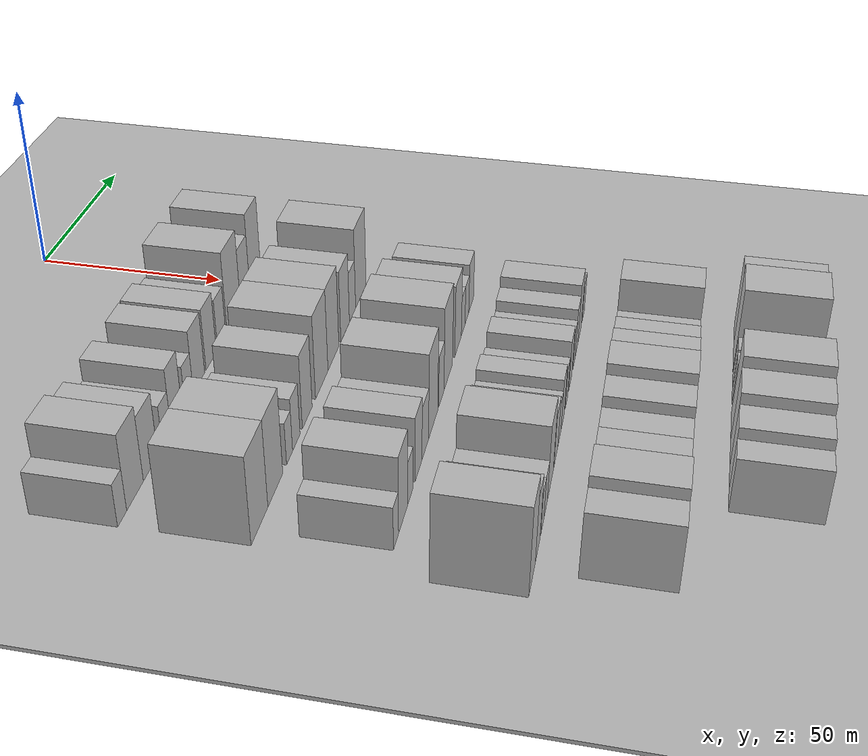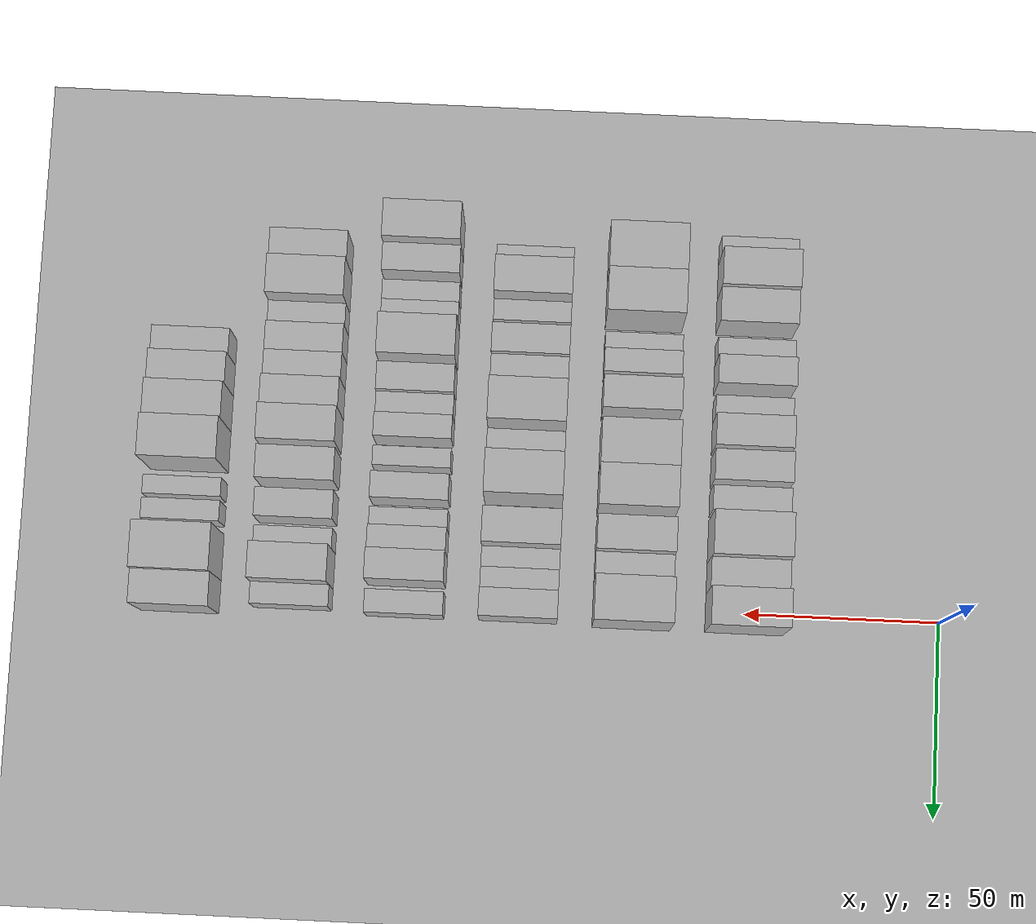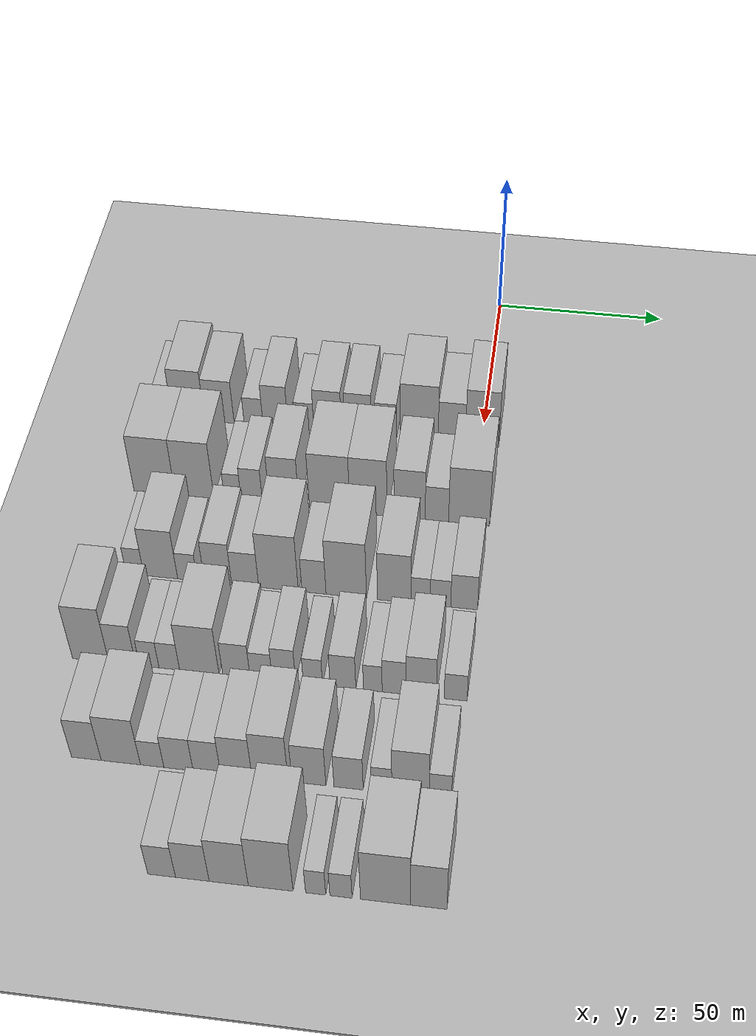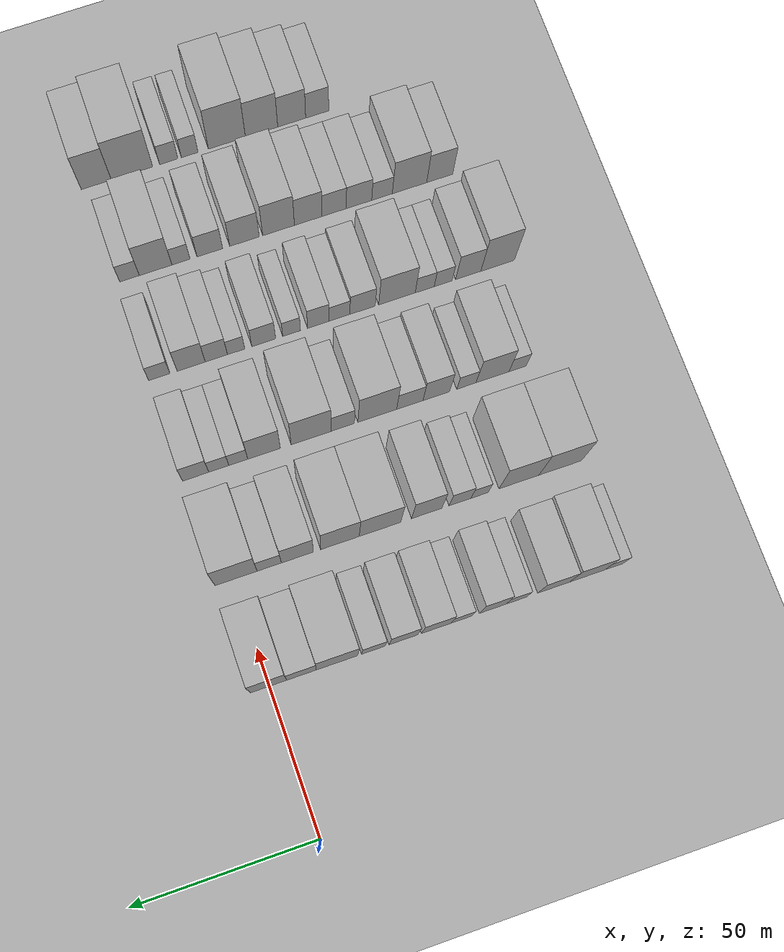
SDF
<sdf version="1.6">
 <world name="default">
  <include><name>ground_plane_1</name><uri>model://HANNAS_ground_plane</uri></include>
  <include>
   <name>ground_plane_2</name>
   <uri>model://HANNAS_ground_plane</uri>
   <pose>100 0 0  0 0 0</pose>
  </include>
  <model name="building_47">
   <static>1</static>
   <pose>50.0000 -94.1896 0 0.000000 0.000000 0.000000</pose>
   <link name="link">
    <pose>0 0 6.00 0 0 0</pose>
    <collision name="collision"><geometry><box><size>20.0000 5.1019 12.0000</size></box></geometry></collision>
    <visual name="visual">
     <cast_shadows>0</cast_shadows>
     <geometry><box><size>20.0000 5.1019 12.0000</size></box></geometry>
     <material>
      <script>
       <uri>model://HANNAS_wall/materials/scripts</uri>
       <uri>model://HANNAS_wall/materials/textures</uri>
       <name>vrc/HANNAS_wall</name>
      </script>
     </material>
    </visual>
   </link>
  </model>
  <model name="building_48">
   <static>1</static>
   <pose>50.0000 -86.7541 0 0.000000 0.000000 0.000000</pose>
   <link name="link">
    <pose>0 0 10.50 0 0 0</pose>
    <collision name="collision"><geometry><box><size>20.0000 9.7691 21.0000</size></box></geometry></collision>
    <visual name="visual">
     <cast_shadows>0</cast_shadows>
     <geometry><box><size>20.0000 9.7691 21.0000</size></box></geometry>
     <material>
      <script>
       <uri>model://HANNAS_wall/materials/scripts</uri>
       <uri>model://HANNAS_wall/materials/textures</uri>
       <name>vrc/HANNAS_wall</name>
      </script>
     </material>
    </visual>
   </link>
  </model>
  <model name="building_49">
   <static>1</static>
   <pose>50.0000 -77.4556 0 0.000000 0.000000 0.000000</pose>
   <link name="link">
    <pose>0 0 9.00 0 0 0</pose>
    <collision name="collision"><geometry><box><size>20.0000 8.8279 18.0000</size></box></geometry></collision>
    <visual name="visual">
     <cast_shadows>0</cast_shadows>
     <geometry><box><size>20.0000 8.8279 18.0000</size></box></geometry>
     <material>
      <script>
       <uri>model://HANNAS_wall/materials/scripts</uri>
       <uri>model://HANNAS_wall/materials/textures</uri>
       <name>vrc/HANNAS_wall</name>
      </script>
     </material>
    </visual>
   </link>
  </model>
  <model name="building_50">
   <static>1</static>
   <pose>50.0000 -67.2136 0 0.000000 0.000000 0.000000</pose>
   <link name="link">
    <pose>0 0 6.00 0 0 0</pose>
    <collision name="collision"><geometry><box><size>20.0000 5.6560 12.0000</size></box></geometry></collision>
    <visual name="visual">
     <cast_shadows>0</cast_shadows>
     <geometry><box><size>20.0000 5.6560 12.0000</size></box></geometry>
     <material>
      <script>
       <uri>model://HANNAS_wall/materials/scripts</uri>
       <uri>model://HANNAS_wall/materials/textures</uri>
       <name>vrc/HANNAS_wall</name>
      </script>
     </material>
    </visual>
   </link>
  </model>
  <model name="building_51">
   <static>1</static>
   <pose>50.0000 -60.6760 0 0.000000 0.000000 0.000000</pose>
   <link name="link">
    <pose>0 0 9.00 0 0 0</pose>
    <collision name="collision"><geometry><box><size>20.0000 7.4193 18.0000</size></box></geometry></collision>
    <visual name="visual">
     <cast_shadows>0</cast_shadows>
     <geometry><box><size>20.0000 7.4193 18.0000</size></box></geometry>
     <material>
      <script>
       <uri>model://HANNAS_wall/materials/scripts</uri>
       <uri>model://HANNAS_wall/materials/textures</uri>
       <name>vrc/HANNAS_wall</name>
      </script>
     </material>
    </visual>
   </link>
  </model>
  <model name="building_52">
   <static>1</static>
   <pose>50.0000 -52.1149 0 0.000000 0.000000 0.000000</pose>
   <link name="link">
    <pose>0 0 6.00 0 0 0</pose>
    <collision name="collision"><geometry><box><size>20.0000 5.7030 12.0000</size></box></geometry></collision>
    <visual name="visual">
     <cast_shadows>0</cast_shadows>
     <geometry><box><size>20.0000 5.7030 12.0000</size></box></geometry>
     <material>
      <script>
       <uri>model://HANNAS_wall/materials/scripts</uri>
       <uri>model://HANNAS_wall/materials/textures</uri>
       <name>vrc/HANNAS_wall</name>
      </script>
     </material>
    </visual>
   </link>
  </model>
  <model name="building_53">
   <static>1</static>
   <pose>50.0000 -45.1752 0 0.000000 0.000000 0.000000</pose>
   <link name="link">
    <pose>0 0 9.00 0 0 0</pose>
    <collision name="collision"><geometry><box><size>20.0000 8.1764 18.0000</size></box></geometry></collision>
    <visual name="visual">
     <cast_shadows>0</cast_shadows>
     <geometry><box><size>20.0000 8.1764 18.0000</size></box></geometry>
     <material>
      <script>
       <uri>model://HANNAS_wall/materials/scripts</uri>
       <uri>model://HANNAS_wall/materials/textures</uri>
       <name>vrc/HANNAS_wall</name>
      </script>
     </material>
    </visual>
   </link>
  </model>
  <model name="building_54">
   <static>1</static>
   <pose>50.0000 -36.1667 0 0.000000 0.000000 0.000000</pose>
   <link name="link">
    <pose>0 0 9.00 0 0 0</pose>
    <collision name="collision"><geometry><box><size>20.0000 7.8407 18.0000</size></box></geometry></collision>
    <visual name="visual">
     <cast_shadows>0</cast_shadows>
     <geometry><box><size>20.0000 7.8407 18.0000</size></box></geometry>
     <material>
      <script>
       <uri>model://HANNAS_wall/materials/scripts</uri>
       <uri>model://HANNAS_wall/materials/textures</uri>
       <name>vrc/HANNAS_wall</name>
      </script>
     </material>
    </visual>
   </link>
  </model>
  <model name="building_55">
   <static>1</static>
   <pose>50.0000 -28.0288 0 0.000000 0.000000 0.000000</pose>
   <link name="link">
    <pose>0 0 7.50 0 0 0</pose>
    <collision name="collision"><geometry><box><size>20.0000 6.4351 15.0000</size></box></geometry></collision>
    <visual name="visual">
     <cast_shadows>0</cast_shadows>
     <geometry><box><size>20.0000 6.4351 15.0000</size></box></geometry>
     <material>
      <script>
       <uri>model://HANNAS_wall/materials/scripts</uri>
       <uri>model://HANNAS_wall/materials/textures</uri>
       <name>vrc/HANNAS_wall</name>
      </script>
     </material>
    </visual>
   </link>
  </model>
  <model name="building_56">
   <static>1</static>
   <pose>50.0000 -18.2047 0 0.000000 0.000000 0.000000</pose>
   <link name="link">
    <pose>0 0 12.00 0 0 0</pose>
    <collision name="collision"><geometry><box><size>20.0000 11.2131 24.0000</size></box></geometry></collision>
    <visual name="visual">
     <cast_shadows>0</cast_shadows>
     <geometry><box><size>20.0000 11.2131 24.0000</size></box></geometry>
     <material>
      <script>
       <uri>model://HANNAS_wall/materials/scripts</uri>
       <uri>model://HANNAS_wall/materials/textures</uri>
       <name>vrc/HANNAS_wall</name>
      </script>
     </material>
    </visual>
   </link>
  </model>
  <model name="building_57">
   <static>1</static>
   <pose>50.0000 -8.6373 0 0.000000 0.000000 0.000000</pose>
   <link name="link">
    <pose>0 0 9.00 0 0 0</pose>
    <collision name="collision"><geometry><box><size>20.0000 7.9216 18.0000</size></box></geometry></collision>
    <visual name="visual">
     <cast_shadows>0</cast_shadows>
     <geometry><box><size>20.0000 7.9216 18.0000</size></box></geometry>
     <material>
      <script>
       <uri>model://HANNAS_wall/materials/scripts</uri>
       <uri>model://HANNAS_wall/materials/textures</uri>
       <name>vrc/HANNAS_wall</name>
      </script>
     </material>
    </visual>
   </link>
  </model>
  <model name="building_58">
   <static>1</static>
   <pose>50.0000 0.1836 0 0.000000 0.000000 0.000000</pose>
   <link name="link">
    <pose>0 0 12.00 0 0 0</pose>
    <collision name="collision"><geometry><box><size>20.0000 9.7202 24.0000</size></box></geometry></collision>
    <visual name="visual">
     <cast_shadows>0</cast_shadows>
     <geometry><box><size>20.0000 9.7202 24.0000</size></box></geometry>
     <material>
      <script>
       <uri>model://HANNAS_wall/materials/scripts</uri>
       <uri>model://HANNAS_wall/materials/textures</uri>
       <name>vrc/HANNAS_wall</name>
      </script>
     </material>
    </visual>
   </link>
  </model>
  <model name="building_164">
   <static>1</static>
   <pose>79.0000 -90.3700 0 0.000000 0.000000 0.000000</pose>
   <link name="link">
    <pose>0 0 12.00 0 0 0</pose>
    <collision name="collision"><geometry><box><size>20.0000 11.9789 24.0000</size></box></geometry></collision>
    <visual name="visual">
     <cast_shadows>0</cast_shadows>
     <geometry><box><size>20.0000 11.9789 24.0000</size></box></geometry>
     <material>
      <script>
       <uri>model://HANNAS_wall/materials/scripts</uri>
       <uri>model://HANNAS_wall/materials/textures</uri>
       <name>vrc/HANNAS_wall</name>
      </script>
     </material>
    </visual>
   </link>
  </model>
  <model name="building_165">
   <static>1</static>
   <pose>79.0000 -78.7719 0 0.000000 0.000000 0.000000</pose>
   <link name="link">
    <pose>0 0 12.00 0 0 0</pose>
    <collision name="collision"><geometry><box><size>20.0000 11.2173 24.0000</size></box></geometry></collision>
    <visual name="visual">
     <cast_shadows>0</cast_shadows>
     <geometry><box><size>20.0000 11.2173 24.0000</size></box></geometry>
     <material>
      <script>
       <uri>model://HANNAS_wall/materials/scripts</uri>
       <uri>model://HANNAS_wall/materials/textures</uri>
       <name>vrc/HANNAS_wall</name>
      </script>
     </material>
    </visual>
   </link>
  </model>
  <model name="building_166">
   <static>1</static>
   <pose>79.0000 -67.7441 0 0.000000 0.000000 0.000000</pose>
   <link name="link">
    <pose>0 0 6.00 0 0 0</pose>
    <collision name="collision"><geometry><box><size>20.0000 4.8381 12.0000</size></box></geometry></collision>
    <visual name="visual">
     <cast_shadows>0</cast_shadows>
     <geometry><box><size>20.0000 4.8381 12.0000</size></box></geometry>
     <material>
      <script>
       <uri>model://HANNAS_wall/materials/scripts</uri>
       <uri>model://HANNAS_wall/materials/textures</uri>
       <name>vrc/HANNAS_wall</name>
      </script>
     </material>
    </visual>
   </link>
  </model>
  <model name="building_167">
   <static>1</static>
   <pose>79.0000 -62.2663 0 0.000000 0.000000 0.000000</pose>
   <link name="link">
    <pose>0 0 7.50 0 0 0</pose>
    <collision name="collision"><geometry><box><size>20.0000 6.1175 15.0000</size></box></geometry></collision>
    <visual name="visual">
     <cast_shadows>0</cast_shadows>
     <geometry><box><size>20.0000 6.1175 15.0000</size></box></geometry>
     <material>
      <script>
       <uri>model://HANNAS_wall/materials/scripts</uri>
       <uri>model://HANNAS_wall/materials/textures</uri>
       <name>vrc/HANNAS_wall</name>
      </script>
     </material>
    </visual>
   </link>
  </model>
  <model name="building_168">
   <static>1</static>
   <pose>79.0000 -52.9854 0 0.000000 0.000000 0.000000</pose>
   <link name="link">
    <pose>0 0 10.50 0 0 0</pose>
    <collision name="collision"><geometry><box><size>20.0000 8.4445 21.0000</size></box></geometry></collision>
    <visual name="visual">
     <cast_shadows>0</cast_shadows>
     <geometry><box><size>20.0000 8.4445 21.0000</size></box></geometry>
     <material>
      <script>
       <uri>model://HANNAS_wall/materials/scripts</uri>
       <uri>model://HANNAS_wall/materials/textures</uri>
       <name>vrc/HANNAS_wall</name>
      </script>
     </material>
    </visual>
   </link>
  </model>
  <model name="building_169">
   <static>1</static>
   <pose>79.0000 -40.0186 0 0.000000 0.000000 0.000000</pose>
   <link name="link">
    <pose>0 0 12.00 0 0 0</pose>
    <collision name="collision"><geometry><box><size>20.0000 11.4890 24.0000</size></box></geometry></collision>
    <visual name="visual">
     <cast_shadows>0</cast_shadows>
     <geometry><box><size>20.0000 11.4890 24.0000</size></box></geometry>
     <material>
      <script>
       <uri>model://HANNAS_wall/materials/scripts</uri>
       <uri>model://HANNAS_wall/materials/textures</uri>
       <name>vrc/HANNAS_wall</name>
      </script>
     </material>
    </visual>
   </link>
  </model>
  <model name="building_170">
   <static>1</static>
   <pose>79.0000 -28.9807 0 0.000000 0.000000 0.000000</pose>
   <link name="link">
    <pose>0 0 12.00 0 0 0</pose>
    <collision name="collision"><geometry><box><size>20.0000 10.5869 24.0000</size></box></geometry></collision>
    <visual name="visual">
     <cast_shadows>0</cast_shadows>
     <geometry><box><size>20.0000 10.5869 24.0000</size></box></geometry>
     <material>
      <script>
       <uri>model://HANNAS_wall/materials/scripts</uri>
       <uri>model://HANNAS_wall/materials/textures</uri>
       <name>vrc/HANNAS_wall</name>
      </script>
     </material>
    </visual>
   </link>
  </model>
  <model name="building_171">
   <static>1</static>
   <pose>79.0000 -17.2989 0 0.000000 0.000000 0.000000</pose>
   <link name="link">
    <pose>0 0 10.50 0 0 0</pose>
    <collision name="collision"><geometry><box><size>20.0000 8.7767 21.0000</size></box></geometry></collision>
    <visual name="visual">
     <cast_shadows>0</cast_shadows>
     <geometry><box><size>20.0000 8.7767 21.0000</size></box></geometry>
     <material>
      <script>
       <uri>model://HANNAS_wall/materials/scripts</uri>
       <uri>model://HANNAS_wall/materials/textures</uri>
       <name>vrc/HANNAS_wall</name>
      </script>
     </material>
    </visual>
   </link>
  </model>
  <model name="building_172">
   <static>1</static>
   <pose>79.0000 -9.6079 0 0.000000 0.000000 0.000000</pose>
   <link name="link">
    <pose>0 0 7.50 0 0 0</pose>
    <collision name="collision"><geometry><box><size>20.0000 6.6052 15.0000</size></box></geometry></collision>
    <visual name="visual">
     <cast_shadows>0</cast_shadows>
     <geometry><box><size>20.0000 6.6052 15.0000</size></box></geometry>
     <material>
      <script>
       <uri>model://HANNAS_wall/materials/scripts</uri>
       <uri>model://HANNAS_wall/materials/textures</uri>
       <name>vrc/HANNAS_wall</name>
      </script>
     </material>
    </visual>
   </link>
  </model>
  <model name="building_173">
   <static>1</static>
   <pose>79.0000 -0.5619 0 0.000000 0.000000 0.000000</pose>
   <link name="link">
    <pose>0 0 12.00 0 0 0</pose>
    <collision name="collision"><geometry><box><size>20.0000 11.4868 24.0000</size></box></geometry></collision>
    <visual name="visual">
     <cast_shadows>0</cast_shadows>
     <geometry><box><size>20.0000 11.4868 24.0000</size></box></geometry>
     <material>
      <script>
       <uri>model://HANNAS_wall/materials/scripts</uri>
       <uri>model://HANNAS_wall/materials/textures</uri>
       <name>vrc/HANNAS_wall</name>
      </script>
     </material>
    </visual>
   </link>
  </model>
  <model name="building_271">
   <static>1</static>
   <pose>108.0000 -89.2500 0 0.000000 0.000000 0.000000</pose>
   <link name="link">
    <pose>0 0 6.00 0 0 0</pose>
    <collision name="collision"><geometry><box><size>20.0000 4.9709 12.0000</size></box></geometry></collision>
    <visual name="visual">
     <cast_shadows>0</cast_shadows>
     <geometry><box><size>20.0000 4.9709 12.0000</size></box></geometry>
     <material>
      <script>
       <uri>model://HANNAS_wall/materials/scripts</uri>
       <uri>model://HANNAS_wall/materials/textures</uri>
       <name>vrc/HANNAS_wall</name>
      </script>
     </material>
    </visual>
   </link>
  </model>
  <model name="building_272">
   <static>1</static>
   <pose>108.0000 -82.0687 0 0.000000 0.000000 0.000000</pose>
   <link name="link">
    <pose>0 0 10.50 0 0 0</pose>
    <collision name="collision"><geometry><box><size>20.0000 9.3917 21.0000</size></box></geometry></collision>
    <visual name="visual">
     <cast_shadows>0</cast_shadows>
     <geometry><box><size>20.0000 9.3917 21.0000</size></box></geometry>
     <material>
      <script>
       <uri>model://HANNAS_wall/materials/scripts</uri>
       <uri>model://HANNAS_wall/materials/textures</uri>
       <name>vrc/HANNAS_wall</name>
      </script>
     </material>
    </visual>
   </link>
  </model>
  <model name="building_273">
   <static>1</static>
   <pose>108.0000 -74.6486 0 0.000000 0.000000 0.000000</pose>
   <link name="link">
    <pose>0 0 6.00 0 0 0</pose>
    <collision name="collision"><geometry><box><size>20.0000 5.4487 12.0000</size></box></geometry></collision>
    <visual name="visual">
     <cast_shadows>0</cast_shadows>
     <geometry><box><size>20.0000 5.4487 12.0000</size></box></geometry>
     <material>
      <script>
       <uri>model://HANNAS_wall/materials/scripts</uri>
       <uri>model://HANNAS_wall/materials/textures</uri>
       <name>vrc/HANNAS_wall</name>
      </script>
     </material>
    </visual>
   </link>
  </model>
  <model name="building_274">
   <static>1</static>
   <pose>108.0000 -66.1554 0 0.000000 0.000000 0.000000</pose>
   <link name="link">
    <pose>0 0 9.00 0 0 0</pose>
    <collision name="collision"><geometry><box><size>20.0000 7.5378 18.0000</size></box></geometry></collision>
    <visual name="visual">
     <cast_shadows>0</cast_shadows>
     <geometry><box><size>20.0000 7.5378 18.0000</size></box></geometry>
     <material>
      <script>
       <uri>model://HANNAS_wall/materials/scripts</uri>
       <uri>model://HANNAS_wall/materials/textures</uri>
       <name>vrc/HANNAS_wall</name>
      </script>
     </material>
    </visual>
   </link>
  </model>
  <model name="building_275">
   <static>1</static>
   <pose>108.0000 -58.6547 0 0.000000 0.000000 0.000000</pose>
   <link name="link">
    <pose>0 0 7.50 0 0 0</pose>
    <collision name="collision"><geometry><box><size>20.0000 7.4636 15.0000</size></box></geometry></collision>
    <visual name="visual">
     <cast_shadows>0</cast_shadows>
     <geometry><box><size>20.0000 7.4636 15.0000</size></box></geometry>
     <material>
      <script>
       <uri>model://HANNAS_wall/materials/scripts</uri>
       <uri>model://HANNAS_wall/materials/textures</uri>
       <name>vrc/HANNAS_wall</name>
      </script>
     </material>
    </visual>
   </link>
  </model>
  <model name="building_276">
   <static>1</static>
   <pose>108.0000 -49.4781 0 0.000000 0.000000 0.000000</pose>
   <link name="link">
    <pose>0 0 12.00 0 0 0</pose>
    <collision name="collision"><geometry><box><size>20.0000 10.8895 24.0000</size></box></geometry></collision>
    <visual name="visual">
     <cast_shadows>0</cast_shadows>
     <geometry><box><size>20.0000 10.8895 24.0000</size></box></geometry>
     <material>
      <script>
       <uri>model://HANNAS_wall/materials/scripts</uri>
       <uri>model://HANNAS_wall/materials/textures</uri>
       <name>vrc/HANNAS_wall</name>
      </script>
     </material>
    </visual>
   </link>
  </model>
  <model name="building_277">
   <static>1</static>
   <pose>108.0000 -39.7363 0 0.000000 0.000000 0.000000</pose>
   <link name="link">
    <pose>0 0 7.50 0 0 0</pose>
    <collision name="collision"><geometry><box><size>20.0000 6.5939 15.0000</size></box></geometry></collision>
    <visual name="visual">
     <cast_shadows>0</cast_shadows>
     <geometry><box><size>20.0000 6.5939 15.0000</size></box></geometry>
     <material>
      <script>
       <uri>model://HANNAS_wall/materials/scripts</uri>
       <uri>model://HANNAS_wall/materials/textures</uri>
       <name>vrc/HANNAS_wall</name>
      </script>
     </material>
    </visual>
   </link>
  </model>
  <model name="building_278">
   <static>1</static>
   <pose>108.0000 -30.9062 0 0.000000 0.000000 0.000000</pose>
   <link name="link">
    <pose>0 0 12.00 0 0 0</pose>
    <collision name="collision"><geometry><box><size>20.0000 11.0664 24.0000</size></box></geometry></collision>
    <visual name="visual">
     <cast_shadows>0</cast_shadows>
     <geometry><box><size>20.0000 11.0664 24.0000</size></box></geometry>
     <material>
      <script>
       <uri>model://HANNAS_wall/materials/scripts</uri>
       <uri>model://HANNAS_wall/materials/textures</uri>
       <name>vrc/HANNAS_wall</name>
      </script>
     </material>
    </visual>
   </link>
  </model>
  <model name="building_279">
   <static>1</static>
   <pose>108.0000 -17.8309 0 0.000000 0.000000 0.000000</pose>
   <link name="link">
    <pose>0 0 10.50 0 0 0</pose>
    <collision name="collision"><geometry><box><size>20.0000 9.0842 21.0000</size></box></geometry></collision>
    <visual name="visual">
     <cast_shadows>0</cast_shadows>
     <geometry><box><size>20.0000 9.0842 21.0000</size></box></geometry>
     <material>
      <script>
       <uri>model://HANNAS_wall/materials/scripts</uri>
       <uri>model://HANNAS_wall/materials/textures</uri>
       <name>vrc/HANNAS_wall</name>
      </script>
     </material>
    </visual>
   </link>
  </model>
  <model name="building_280">
   <static>1</static>
   <pose>108.0000 -10.6694 0 0.000000 0.000000 0.000000</pose>
   <link name="link">
    <pose>0 0 6.00 0 0 0</pose>
    <collision name="collision"><geometry><box><size>20.0000 5.2388 12.0000</size></box></geometry></collision>
    <visual name="visual">
     <cast_shadows>0</cast_shadows>
     <geometry><box><size>20.0000 5.2388 12.0000</size></box></geometry>
     <material>
      <script>
       <uri>model://HANNAS_wall/materials/scripts</uri>
       <uri>model://HANNAS_wall/materials/textures</uri>
       <name>vrc/HANNAS_wall</name>
      </script>
     </material>
    </visual>
   </link>
  </model>
  <model name="building_281">
   <static>1</static>
   <pose>108.0000 -5.2840 0 0.000000 0.000000 0.000000</pose>
   <link name="link">
    <pose>0 0 6.00 0 0 0</pose>
    <collision name="collision"><geometry><box><size>20.0000 5.5318 12.0000</size></box></geometry></collision>
    <visual name="visual">
     <cast_shadows>0</cast_shadows>
     <geometry><box><size>20.0000 5.5318 12.0000</size></box></geometry>
     <material>
      <script>
       <uri>model://HANNAS_wall/materials/scripts</uri>
       <uri>model://HANNAS_wall/materials/textures</uri>
       <name>vrc/HANNAS_wall</name>
      </script>
     </material>
    </visual>
   </link>
  </model>
  <model name="building_282">
   <static>1</static>
   <pose>108.0000 1.1036 0 0.000000 0.000000 0.000000</pose>
   <link name="link">
    <pose>0 0 7.50 0 0 0</pose>
    <collision name="collision"><geometry><box><size>20.0000 7.2434 15.0000</size></box></geometry></collision>
    <visual name="visual">
     <cast_shadows>0</cast_shadows>
     <geometry><box><size>20.0000 7.2434 15.0000</size></box></geometry>
     <material>
      <script>
       <uri>model://HANNAS_wall/materials/scripts</uri>
       <uri>model://HANNAS_wall/materials/textures</uri>
       <name>vrc/HANNAS_wall</name>
      </script>
     </material>
    </visual>
   </link>
  </model>
  <model name="building_391">
   <static>1</static>
   <pose>137.0000 -94.3333 0 0.000000 0.000000 0.000000</pose>
   <link name="link">
    <pose>0 0 12.00 0 0 0</pose>
    <collision name="collision"><geometry><box><size>20.0000 9.7333 24.0000</size></box></geometry></collision>
    <visual name="visual">
     <cast_shadows>0</cast_shadows>
     <geometry><box><size>20.0000 9.7333 24.0000</size></box></geometry>
     <material>
      <script>
       <uri>model://HANNAS_wall/materials/scripts</uri>
       <uri>model://HANNAS_wall/materials/textures</uri>
       <name>vrc/HANNAS_wall</name>
      </script>
     </material>
    </visual>
   </link>
  </model>
  <model name="building_392">
   <static>1</static>
   <pose>137.0000 -85.8264 0 0.000000 0.000000 0.000000</pose>
   <link name="link">
    <pose>0 0 9.00 0 0 0</pose>
    <collision name="collision"><geometry><box><size>20.0000 7.2807 18.0000</size></box></geometry></collision>
    <visual name="visual">
     <cast_shadows>0</cast_shadows>
     <geometry><box><size>20.0000 7.2807 18.0000</size></box></geometry>
     <material>
      <script>
       <uri>model://HANNAS_wall/materials/scripts</uri>
       <uri>model://HANNAS_wall/materials/textures</uri>
       <name>vrc/HANNAS_wall</name>
      </script>
     </material>
    </visual>
   </link>
  </model>
  <model name="building_393">
   <static>1</static>
   <pose>137.0000 -78.6142 0 0.000000 0.000000 0.000000</pose>
   <link name="link">
    <pose>0 0 6.00 0 0 0</pose>
    <collision name="collision"><geometry><box><size>20.0000 5.1437 12.0000</size></box></geometry></collision>
    <visual name="visual">
     <cast_shadows>0</cast_shadows>
     <geometry><box><size>20.0000 5.1437 12.0000</size></box></geometry>
     <material>
      <script>
       <uri>model://HANNAS_wall/materials/scripts</uri>
       <uri>model://HANNAS_wall/materials/textures</uri>
       <name>vrc/HANNAS_wall</name>
      </script>
     </material>
    </visual>
   </link>
  </model>
  <model name="building_394">
   <static>1</static>
   <pose>137.0000 -73.2969 0 0.000000 0.000000 0.000000</pose>
   <link name="link">
    <pose>0 0 6.00 0 0 0</pose>
    <collision name="collision"><geometry><box><size>20.0000 5.4908 12.0000</size></box></geometry></collision>
    <visual name="visual">
     <cast_shadows>0</cast_shadows>
     <geometry><box><size>20.0000 5.4908 12.0000</size></box></geometry>
     <material>
      <script>
       <uri>model://HANNAS_wall/materials/scripts</uri>
       <uri>model://HANNAS_wall/materials/textures</uri>
       <name>vrc/HANNAS_wall</name>
      </script>
     </material>
    </visual>
   </link>
  </model>
  <model name="building_395">
   <static>1</static>
   <pose>137.0000 -65.3119 0 0.000000 0.000000 0.000000</pose>
   <link name="link">
    <pose>0 0 10.50 0 0 0</pose>
    <collision name="collision"><geometry><box><size>20.0000 10.4792 21.0000</size></box></geometry></collision>
    <visual name="visual">
     <cast_shadows>0</cast_shadows>
     <geometry><box><size>20.0000 10.4792 21.0000</size></box></geometry>
     <material>
      <script>
       <uri>model://HANNAS_wall/materials/scripts</uri>
       <uri>model://HANNAS_wall/materials/textures</uri>
       <name>vrc/HANNAS_wall</name>
      </script>
     </material>
    </visual>
   </link>
  </model>
  <model name="building_396">
   <static>1</static>
   <pose>137.0000 -55.4466 0 0.000000 0.000000 0.000000</pose>
   <link name="link">
    <pose>0 0 7.50 0 0 0</pose>
    <collision name="collision"><geometry><box><size>20.0000 7.2514 15.0000</size></box></geometry></collision>
    <visual name="visual">
     <cast_shadows>0</cast_shadows>
     <geometry><box><size>20.0000 7.2514 15.0000</size></box></geometry>
     <material>
      <script>
       <uri>model://HANNAS_wall/materials/scripts</uri>
       <uri>model://HANNAS_wall/materials/textures</uri>
       <name>vrc/HANNAS_wall</name>
      </script>
     </material>
    </visual>
   </link>
  </model>
  <model name="building_397">
   <static>1</static>
   <pose>137.0000 -48.8914 0 0.000000 0.000000 0.000000</pose>
   <link name="link">
    <pose>0 0 6.00 0 0 0</pose>
    <collision name="collision"><geometry><box><size>20.0000 5.8591 12.0000</size></box></geometry></collision>
    <visual name="visual">
     <cast_shadows>0</cast_shadows>
     <geometry><box><size>20.0000 5.8591 12.0000</size></box></geometry>
     <material>
      <script>
       <uri>model://HANNAS_wall/materials/scripts</uri>
       <uri>model://HANNAS_wall/materials/textures</uri>
       <name>vrc/HANNAS_wall</name>
      </script>
     </material>
    </visual>
   </link>
  </model>
  <model name="building_398">
   <static>1</static>
   <pose>137.0000 -42.8744 0 0.000000 0.000000 0.000000</pose>
   <link name="link">
    <pose>0 0 7.50 0 0 0</pose>
    <collision name="collision"><geometry><box><size>20.0000 6.1749 15.0000</size></box></geometry></collision>
    <visual name="visual">
     <cast_shadows>0</cast_shadows>
     <geometry><box><size>20.0000 6.1749 15.0000</size></box></geometry>
     <material>
      <script>
       <uri>model://HANNAS_wall/materials/scripts</uri>
       <uri>model://HANNAS_wall/materials/textures</uri>
       <name>vrc/HANNAS_wall</name>
      </script>
     </material>
    </visual>
   </link>
  </model>
  <model name="building_399">
   <static>1</static>
   <pose>137.0000 -35.2652 0 0.000000 0.000000 0.000000</pose>
   <link name="link">
    <pose>0 0 6.00 0 0 0</pose>
    <collision name="collision"><geometry><box><size>20.0000 5.0435 12.0000</size></box></geometry></collision>
    <visual name="visual">
     <cast_shadows>0</cast_shadows>
     <geometry><box><size>20.0000 5.0435 12.0000</size></box></geometry>
     <material>
      <script>
       <uri>model://HANNAS_wall/materials/scripts</uri>
       <uri>model://HANNAS_wall/materials/textures</uri>
       <name>vrc/HANNAS_wall</name>
      </script>
     </material>
    </visual>
   </link>
  </model>
  <model name="building_400">
   <static>1</static>
   <pose>137.0000 -27.3806 0 0.000000 0.000000 0.000000</pose>
   <link name="link">
    <pose>0 0 7.50 0 0 0</pose>
    <collision name="collision"><geometry><box><size>20.0000 6.7258 15.0000</size></box></geometry></collision>
    <visual name="visual">
     <cast_shadows>0</cast_shadows>
     <geometry><box><size>20.0000 6.7258 15.0000</size></box></geometry>
     <material>
      <script>
       <uri>model://HANNAS_wall/materials/scripts</uri>
       <uri>model://HANNAS_wall/materials/textures</uri>
       <name>vrc/HANNAS_wall</name>
      </script>
     </material>
    </visual>
   </link>
  </model>
  <model name="building_401">
   <static>1</static>
   <pose>137.0000 -19.5719 0 0.000000 0.000000 0.000000</pose>
   <link name="link">
    <pose>0 0 6.00 0 0 0</pose>
    <collision name="collision"><geometry><box><size>20.0000 4.8915 12.0000</size></box></geometry></collision>
    <visual name="visual">
     <cast_shadows>0</cast_shadows>
     <geometry><box><size>20.0000 4.8915 12.0000</size></box></geometry>
     <material>
      <script>
       <uri>model://HANNAS_wall/materials/scripts</uri>
       <uri>model://HANNAS_wall/materials/textures</uri>
       <name>vrc/HANNAS_wall</name>
      </script>
     </material>
    </visual>
   </link>
  </model>
  <model name="building_402">
   <static>1</static>
   <pose>137.0000 -14.0060 0 0.000000 0.000000 0.000000</pose>
   <link name="link">
    <pose>0 0 7.50 0 0 0</pose>
    <collision name="collision"><geometry><box><size>20.0000 6.2405 15.0000</size></box></geometry></collision>
    <visual name="visual">
     <cast_shadows>0</cast_shadows>
     <geometry><box><size>20.0000 6.2405 15.0000</size></box></geometry>
     <material>
      <script>
       <uri>model://HANNAS_wall/materials/scripts</uri>
       <uri>model://HANNAS_wall/materials/textures</uri>
       <name>vrc/HANNAS_wall</name>
      </script>
     </material>
    </visual>
   </link>
  </model>
  <model name="building_403">
   <static>1</static>
   <pose>137.0000 -6.9425 0 0.000000 0.000000 0.000000</pose>
   <link name="link">
    <pose>0 0 9.00 0 0 0</pose>
    <collision name="collision"><geometry><box><size>20.0000 7.8864 18.0000</size></box></geometry></collision>
    <visual name="visual">
     <cast_shadows>0</cast_shadows>
     <geometry><box><size>20.0000 7.8864 18.0000</size></box></geometry>
     <material>
      <script>
       <uri>model://HANNAS_wall/materials/scripts</uri>
       <uri>model://HANNAS_wall/materials/textures</uri>
       <name>vrc/HANNAS_wall</name>
      </script>
     </material>
    </visual>
   </link>
  </model>
  <model name="building_404">
   <static>1</static>
   <pose>137.0000 1.9754 0 0.000000 0.000000 0.000000</pose>
   <link name="link">
    <pose>0 0 6.00 0 0 0</pose>
    <collision name="collision"><geometry><box><size>20.0000 5.9493 12.0000</size></box></geometry></collision>
    <visual name="visual">
     <cast_shadows>0</cast_shadows>
     <geometry><box><size>20.0000 5.9493 12.0000</size></box></geometry>
     <material>
      <script>
       <uri>model://HANNAS_wall/materials/scripts</uri>
       <uri>model://HANNAS_wall/materials/textures</uri>
       <name>vrc/HANNAS_wall</name>
      </script>
     </material>
    </visual>
   </link>
  </model>
  <model name="building_513">
   <static>1</static>
   <pose>166.0000 -88.1132 0 0.000000 0.000000 0.000000</pose>
   <link name="link">
    <pose>0 0 9.00 0 0 0</pose>
    <collision name="collision"><geometry><box><size>20.0000 7.6307 18.0000</size></box></geometry></collision>
    <visual name="visual">
     <cast_shadows>0</cast_shadows>
     <geometry><box><size>20.0000 7.6307 18.0000</size></box></geometry>
     <material>
      <script>
       <uri>model://HANNAS_wall/materials/scripts</uri>
       <uri>model://HANNAS_wall/materials/textures</uri>
       <name>vrc/HANNAS_wall</name>
      </script>
     </material>
    </visual>
   </link>
  </model>
  <model name="building_514">
   <static>1</static>
   <pose>166.0000 -79.2713 0 0.000000 0.000000 0.000000</pose>
   <link name="link">
    <pose>0 0 10.50 0 0 0</pose>
    <collision name="collision"><geometry><box><size>20.0000 10.0531 21.0000</size></box></geometry></collision>
    <visual name="visual">
     <cast_shadows>0</cast_shadows>
     <geometry><box><size>20.0000 10.0531 21.0000</size></box></geometry>
     <material>
      <script>
       <uri>model://HANNAS_wall/materials/scripts</uri>
       <uri>model://HANNAS_wall/materials/textures</uri>
       <name>vrc/HANNAS_wall</name>
      </script>
     </material>
    </visual>
   </link>
  </model>
  <model name="building_515">
   <static>1</static>
   <pose>166.0000 -71.2457 0 0.000000 0.000000 0.000000</pose>
   <link name="link">
    <pose>0 0 6.00 0 0 0</pose>
    <collision name="collision"><geometry><box><size>20.0000 5.9980 12.0000</size></box></geometry></collision>
    <visual name="visual">
     <cast_shadows>0</cast_shadows>
     <geometry><box><size>20.0000 5.9980 12.0000</size></box></geometry>
     <material>
      <script>
       <uri>model://HANNAS_wall/materials/scripts</uri>
       <uri>model://HANNAS_wall/materials/textures</uri>
       <name>vrc/HANNAS_wall</name>
      </script>
     </material>
    </visual>
   </link>
  </model>
  <model name="building_516">
   <static>1</static>
   <pose>166.0000 -64.5353 0 0.000000 0.000000 0.000000</pose>
   <link name="link">
    <pose>0 0 7.50 0 0 0</pose>
    <collision name="collision"><geometry><box><size>20.0000 7.4229 15.0000</size></box></geometry></collision>
    <visual name="visual">
     <cast_shadows>0</cast_shadows>
     <geometry><box><size>20.0000 7.4229 15.0000</size></box></geometry>
     <material>
      <script>
       <uri>model://HANNAS_wall/materials/scripts</uri>
       <uri>model://HANNAS_wall/materials/textures</uri>
       <name>vrc/HANNAS_wall</name>
      </script>
     </material>
    </visual>
   </link>
  </model>
  <model name="building_517">
   <static>1</static>
   <pose>166.0000 -57.3238 0 0.000000 0.000000 0.000000</pose>
   <link name="link">
    <pose>0 0 7.50 0 0 0</pose>
    <collision name="collision"><geometry><box><size>20.0000 7.0000 15.0000</size></box></geometry></collision>
    <visual name="visual">
     <cast_shadows>0</cast_shadows>
     <geometry><box><size>20.0000 7.0000 15.0000</size></box></geometry>
     <material>
      <script>
       <uri>model://HANNAS_wall/materials/scripts</uri>
       <uri>model://HANNAS_wall/materials/textures</uri>
       <name>vrc/HANNAS_wall</name>
      </script>
     </material>
    </visual>
   </link>
  </model>
  <model name="building_518">
   <static>1</static>
   <pose>166.0000 -49.8452 0 0.000000 0.000000 0.000000</pose>
   <link name="link">
    <pose>0 0 9.00 0 0 0</pose>
    <collision name="collision"><geometry><box><size>20.0000 7.9572 18.0000</size></box></geometry></collision>
    <visual name="visual">
     <cast_shadows>0</cast_shadows>
     <geometry><box><size>20.0000 7.9572 18.0000</size></box></geometry>
     <material>
      <script>
       <uri>model://HANNAS_wall/materials/scripts</uri>
       <uri>model://HANNAS_wall/materials/textures</uri>
       <name>vrc/HANNAS_wall</name>
      </script>
     </material>
    </visual>
   </link>
  </model>
  <model name="building_519">
   <static>1</static>
   <pose>166.0000 -41.2934 0 0.000000 0.000000 0.000000</pose>
   <link name="link">
    <pose>0 0 10.50 0 0 0</pose>
    <collision name="collision"><geometry><box><size>20.0000 9.1464 21.0000</size></box></geometry></collision>
    <visual name="visual">
     <cast_shadows>0</cast_shadows>
     <geometry><box><size>20.0000 9.1464 21.0000</size></box></geometry>
     <material>
      <script>
       <uri>model://HANNAS_wall/materials/scripts</uri>
       <uri>model://HANNAS_wall/materials/textures</uri>
       <name>vrc/HANNAS_wall</name>
      </script>
     </material>
    </visual>
   </link>
  </model>
  <model name="building_520">
   <static>1</static>
   <pose>166.0000 -31.4747 0 0.000000 0.000000 0.000000</pose>
   <link name="link">
    <pose>0 0 9.00 0 0 0</pose>
    <collision name="collision"><geometry><box><size>20.0000 8.4910 18.0000</size></box></geometry></collision>
    <visual name="visual">
     <cast_shadows>0</cast_shadows>
     <geometry><box><size>20.0000 8.4910 18.0000</size></box></geometry>
     <material>
      <script>
       <uri>model://HANNAS_wall/materials/scripts</uri>
       <uri>model://HANNAS_wall/materials/textures</uri>
       <name>vrc/HANNAS_wall</name>
      </script>
     </material>
    </visual>
   </link>
  </model>
  <model name="building_521">
   <static>1</static>
   <pose>166.0000 -21.5614 0 0.000000 0.000000 0.000000</pose>
   <link name="link">
    <pose>0 0 7.50 0 0 0</pose>
    <collision name="collision"><geometry><box><size>20.0000 7.3355 15.0000</size></box></geometry></collision>
    <visual name="visual">
     <cast_shadows>0</cast_shadows>
     <geometry><box><size>20.0000 7.3355 15.0000</size></box></geometry>
     <material>
      <script>
       <uri>model://HANNAS_wall/materials/scripts</uri>
       <uri>model://HANNAS_wall/materials/textures</uri>
       <name>vrc/HANNAS_wall</name>
      </script>
     </material>
    </visual>
   </link>
  </model>
  <model name="building_522">
   <static>1</static>
   <pose>166.0000 -13.3061 0 0.000000 0.000000 0.000000</pose>
   <link name="link">
    <pose>0 0 6.00 0 0 0</pose>
    <collision name="collision"><geometry><box><size>20.0000 5.1751 12.0000</size></box></geometry></collision>
    <visual name="visual">
     <cast_shadows>0</cast_shadows>
     <geometry><box><size>20.0000 5.1751 12.0000</size></box></geometry>
     <material>
      <script>
       <uri>model://HANNAS_wall/materials/scripts</uri>
       <uri>model://HANNAS_wall/materials/textures</uri>
       <name>vrc/HANNAS_wall</name>
      </script>
     </material>
    </visual>
   </link>
  </model>
  <model name="building_523">
   <static>1</static>
   <pose>166.0000 -6.0880 0 0.000000 0.000000 0.000000</pose>
   <link name="link">
    <pose>0 0 10.50 0 0 0</pose>
    <collision name="collision"><geometry><box><size>20.0000 9.2611 21.0000</size></box></geometry></collision>
    <visual name="visual">
     <cast_shadows>0</cast_shadows>
     <geometry><box><size>20.0000 9.2611 21.0000</size></box></geometry>
     <material>
      <script>
       <uri>model://HANNAS_wall/materials/scripts</uri>
       <uri>model://HANNAS_wall/materials/textures</uri>
       <name>vrc/HANNAS_wall</name>
      </script>
     </material>
    </visual>
   </link>
  </model>
  <model name="building_524">
   <static>1</static>
   <pose>166.0000 1.3256 0 0.000000 0.000000 0.000000</pose>
   <link name="link">
    <pose>0 0 6.00 0 0 0</pose>
    <collision name="collision"><geometry><box><size>20.0000 5.5659 12.0000</size></box></geometry></collision>
    <visual name="visual">
     <cast_shadows>0</cast_shadows>
     <geometry><box><size>20.0000 5.5659 12.0000</size></box></geometry>
     <material>
      <script>
       <uri>model://HANNAS_wall/materials/scripts</uri>
       <uri>model://HANNAS_wall/materials/textures</uri>
       <name>vrc/HANNAS_wall</name>
      </script>
     </material>
    </visual>
   </link>
  </model>
  <model name="building_627">
   <static>1</static>
   <pose>195.0000 -62.3226 0 0.000000 0.000000 0.000000</pose>
   <link name="link">
    <pose>0 0 7.50 0 0 0</pose>
    <collision name="collision"><geometry><box><size>20.0000 6.7587 15.0000</size></box></geometry></collision>
    <visual name="visual">
     <cast_shadows>0</cast_shadows>
     <geometry><box><size>20.0000 6.7587 15.0000</size></box></geometry>
     <material>
      <script>
       <uri>model://HANNAS_wall/materials/scripts</uri>
       <uri>model://HANNAS_wall/materials/textures</uri>
       <name>vrc/HANNAS_wall</name>
      </script>
     </material>
    </visual>
   </link>
  </model>
  <model name="building_628">
   <static>1</static>
   <pose>195.0000 -54.8470 0 0.000000 0.000000 0.000000</pose>
   <link name="link">
    <pose>0 0 9.00 0 0 0</pose>
    <collision name="collision"><geometry><box><size>20.0000 8.1925 18.0000</size></box></geometry></collision>
    <visual name="visual">
     <cast_shadows>0</cast_shadows>
     <geometry><box><size>20.0000 8.1925 18.0000</size></box></geometry>
     <material>
      <script>
       <uri>model://HANNAS_wall/materials/scripts</uri>
       <uri>model://HANNAS_wall/materials/textures</uri>
       <name>vrc/HANNAS_wall</name>
      </script>
     </material>
    </visual>
   </link>
  </model>
  <model name="building_629">
   <static>1</static>
   <pose>195.0000 -46.0250 0 0.000000 0.000000 0.000000</pose>
   <link name="link">
    <pose>0 0 10.50 0 0 0</pose>
    <collision name="collision"><geometry><box><size>20.0000 9.4515 21.0000</size></box></geometry></collision>
    <visual name="visual">
     <cast_shadows>0</cast_shadows>
     <geometry><box><size>20.0000 9.4515 21.0000</size></box></geometry>
     <material>
      <script>
       <uri>model://HANNAS_wall/materials/scripts</uri>
       <uri>model://HANNAS_wall/materials/textures</uri>
       <name>vrc/HANNAS_wall</name>
      </script>
     </material>
    </visual>
   </link>
  </model>
  <model name="building_630">
   <static>1</static>
   <pose>195.0000 -35.8999 0 0.000000 0.000000 0.000000</pose>
   <link name="link">
    <pose>0 0 12.00 0 0 0</pose>
    <collision name="collision"><geometry><box><size>20.0000 10.7986 24.0000</size></box></geometry></collision>
    <visual name="visual">
     <cast_shadows>0</cast_shadows>
     <geometry><box><size>20.0000 10.7986 24.0000</size></box></geometry>
     <material>
      <script>
       <uri>model://HANNAS_wall/materials/scripts</uri>
       <uri>model://HANNAS_wall/materials/textures</uri>
       <name>vrc/HANNAS_wall</name>
      </script>
     </material>
    </visual>
   </link>
  </model>
  <model name="building_631">
   <static>1</static>
   <pose>195.0000 -25.0833 0 0.000000 0.000000 0.000000</pose>
   <link name="link">
    <pose>0 0 6.00 0 0 0</pose>
    <collision name="collision"><geometry><box><size>20.0000 4.8346 12.0000</size></box></geometry></collision>
    <visual name="visual">
     <cast_shadows>0</cast_shadows>
     <geometry><box><size>20.0000 4.8346 12.0000</size></box></geometry>
     <material>
      <script>
       <uri>model://HANNAS_wall/materials/scripts</uri>
       <uri>model://HANNAS_wall/materials/textures</uri>
       <name>vrc/HANNAS_wall</name>
      </script>
     </material>
    </visual>
   </link>
  </model>
  <model name="building_632">
   <static>1</static>
   <pose>195.0000 -19.0089 0 0.000000 0.000000 0.000000</pose>
   <link name="link">
    <pose>0 0 6.00 0 0 0</pose>
    <collision name="collision"><geometry><box><size>20.0000 5.3142 12.0000</size></box></geometry></collision>
    <visual name="visual">
     <cast_shadows>0</cast_shadows>
     <geometry><box><size>20.0000 5.3142 12.0000</size></box></geometry>
     <material>
      <script>
       <uri>model://HANNAS_wall/materials/scripts</uri>
       <uri>model://HANNAS_wall/materials/textures</uri>
       <name>vrc/HANNAS_wall</name>
      </script>
     </material>
    </visual>
   </link>
  </model>
  <model name="building_633">
   <static>1</static>
   <pose>195.0000 -8.3831 0 0.000000 0.000000 0.000000</pose>
   <link name="link">
    <pose>0 0 12.00 0 0 0</pose>
    <collision name="collision"><geometry><box><size>20.0000 11.9374 24.0000</size></box></geometry></collision>
    <visual name="visual">
     <cast_shadows>0</cast_shadows>
     <geometry><box><size>20.0000 11.9374 24.0000</size></box></geometry>
     <material>
      <script>
       <uri>model://HANNAS_wall/materials/scripts</uri>
       <uri>model://HANNAS_wall/materials/textures</uri>
       <name>vrc/HANNAS_wall</name>
      </script>
     </material>
    </visual>
   </link>
  </model>
  <model name="building_634">
   <static>1</static>
   <pose>195.0000 1.9066 0 0.000000 0.000000 0.000000</pose>
   <link name="link">
    <pose>0 0 10.50 0 0 0</pose>
    <collision name="collision"><geometry><box><size>20.0000 8.6421 21.0000</size></box></geometry></collision>
    <visual name="visual">
     <cast_shadows>0</cast_shadows>
     <geometry><box><size>20.0000 8.6421 21.0000</size></box></geometry>
     <material>
      <script>
       <uri>model://HANNAS_wall/materials/scripts</uri>
       <uri>model://HANNAS_wall/materials/textures</uri>
       <name>vrc/HANNAS_wall</name>
      </script>
     </material>
    </visual>
   </link>
  </model>
 </world>
</sdf>
